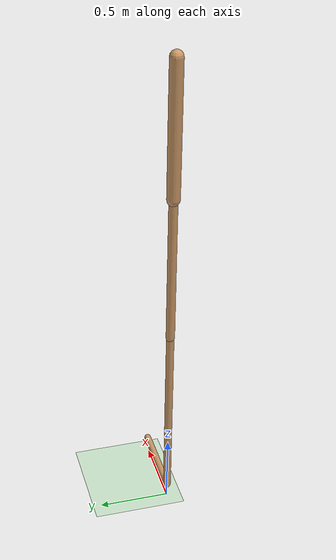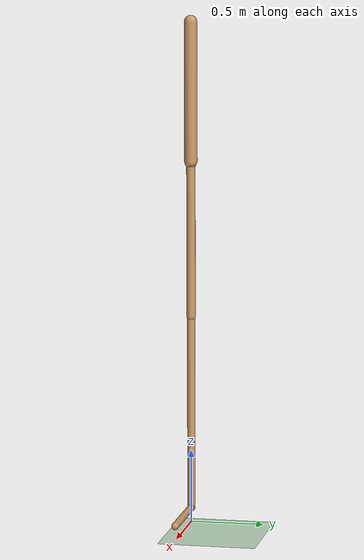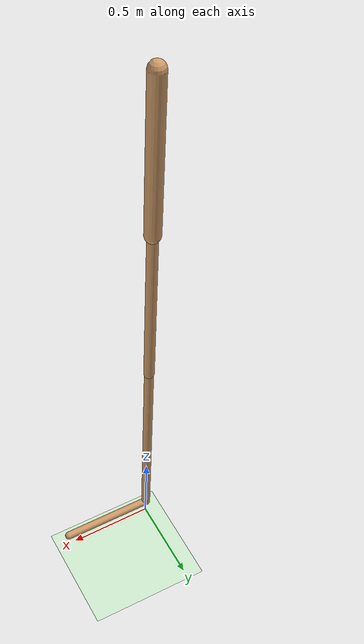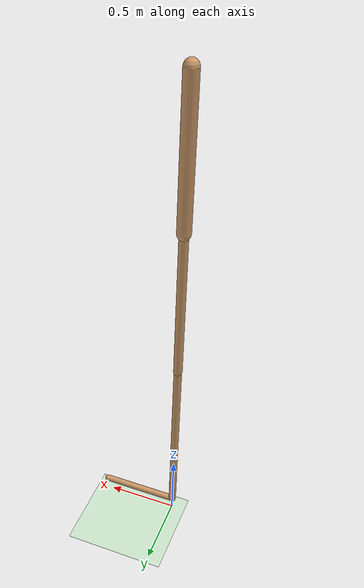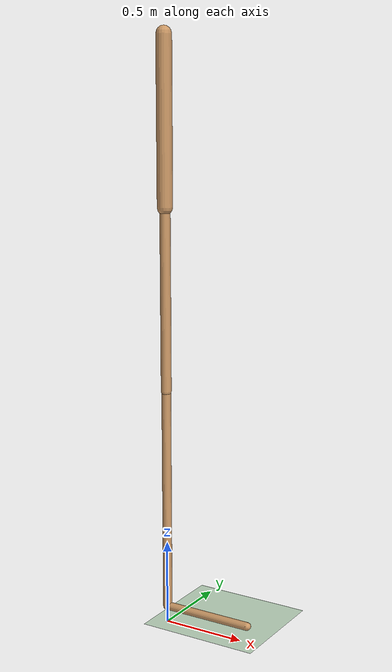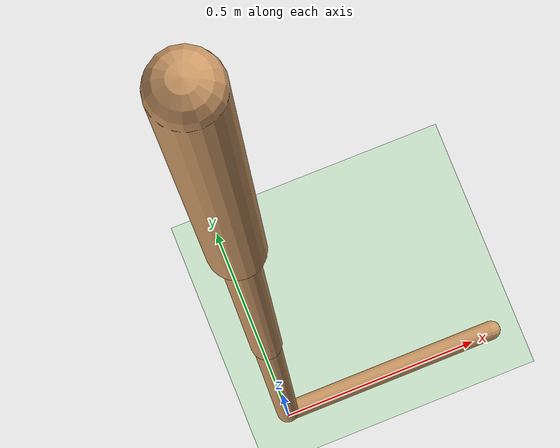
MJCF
<mujoco model="walker2d">
  <compiler angle="degree" inertiafromgeom="true" />
  <default>
    <joint armature="0.01" damping=".1" limited="true" />
    <geom conaffinity="0" condim="3" contype="1" density="1000" friction=".7 .1 .1" rgba="0.8 0.6 .4 1" />
  </default>
  <option integrator="RK4" timestep="0.002" />
  <worldbody>
    <light cutoff="100" diffuse="1 1 1" dir="-0 0 -1.3" directional="true" exponent="1" pos="0 0 1.3" specular=".1 .1 .1" />
    <geom conaffinity="1" condim="3" name="floor" pos="0 0 0" rgba="0.8 0.9 0.8 1" size="40 40 40" type="plane" material="MatPlane" />
    <body name="torso" pos="0 0 2.954086995124817">
      <camera name="track" mode="trackcom" pos="0 -5 -1.25" xyaxes="1 0 0 0 0 1" />
      <joint armature="0" axis="1 0 0" damping="0" limited="false" name="rootx" pos="0 0 -1.25" stiffness="0" type="slide" />
      <joint armature="0" axis="0 0 1" damping="0" limited="false" name="rootz" pos="0 0 -1.25" ref="1.25" stiffness="0" type="slide" />
      <joint armature="0" axis="0 1 0" damping="0" limited="false" name="rooty" pos="0 0 0" stiffness="0" type="hinge" />
      <geom friction="0.9" name="torso_geom" size="0.04437404125928879 0.46990251541137695" type="capsule" />
      <body name="thigh" pos="0 0 -0.46990251541137695">
        <joint axis="0 -1 0" name="thigh_joint" pos="0 0 0" range="-150 0" type="hinge" />
        <site name="torso_thigh_site" pos="0 0 0" size="0.01" type="sphere" rgba="1 0 0 0.5" />
        <geom friction="0.9" pos="0 0 -0.5286564230918884" name="thigh_geom" size="0.030179426074028015 0.5286564230918884" type="capsule" />
        <body name="leg" pos="0 0 -1.7207486629486084">
          <joint axis="0 -1 0" name="leg_joint" pos="0 0 0.6634358167648315" range="-150 0" type="hinge" />
          <site name="thigh_leg_site" pos="0 0 0.25" size="0.01" type="sphere" rgba="1 0 0 0.5" />
          <geom friction="0.9" name="leg_geom" size="0.02693657949566841 0.6634358167648315" type="capsule" />
          <body name="foot" pos="0.5444282293319702 0 -0.7634358167648315">
            <joint axis="0 -1 0" name="foot_joint" pos="-0.5444282293319702 0 0.1" range="-45 45" type="hinge" />
            <site name="leg_foot_site" pos="-0.2 0 0.1" size="0.01" type="sphere" rgba="1 0 0 0.5" />
            <geom friction="0.9" pos="-0.2722141146659851 0 0.1" quat="0.70710678118654757 0 -0.70710678118654746 0" name="foot_geom" size="0.02393895760178566 0.2722141146659851" type="capsule" />
          </body>
        </body>
      </body>

      <body name="thigh_left" pos="0 0 -0.46990251541137695">
        <joint axis="0 -1 0" name="thigh_left_joint" pos="0 0 0" range="-150 0" type="hinge" />
        <site name="torso_thigh_left_site" pos="0 0 0" size="0.01" type="sphere" rgba="1 0 0 0.5" />
        <geom friction="0.9" name="thigh_left_geom" rgba=".7 .3 .6 1" size="0.030179426074028015 0.5286564230918884" pos="0 0 -0.5286564230918884" type="capsule" />
        <body name="leg_left" pos="0 0 -1.7207486629486084">
          <joint axis="0 -1 0" name="leg_left_joint" pos="0 0 0.6634358167648315" range="-150 0" type="hinge" />
          <site name="thigh_leg_left_site" pos="0 0 0.25" size="0.01" type="sphere" rgba="1 0 0 0.5" />
          <geom friction="0.9" name="leg_left_geom" rgba=".7 .3 .6 1" size="0.02693657949566841 0.6634358167648315" type="capsule" />
          <body name="foot_left" pos="0.5444282293319702 0 -0.7634358167648315">
            <joint axis="0 -1 0" name="foot_left_joint" pos="-0.5444282293319702 0 0.1" range="-45 45" type="hinge" />
            <site name="leg_foot_left_site" pos="-0.2 0 0.1" size="0.01" type="sphere" rgba="1 0 0 0.5" />
            <geom friction="1.9" name="foot_left_geom" rgba=".7 .3 .6 1" size="0.02393895760178566 0.2722141146659851" pos="-0.2722141146659851 0 0.1" type="capsule" quat="0.70710678118654757 0 -0.70710678118654746 0" />
          </body>
        </body>
      </body>
    </body>
  </worldbody>
  <actuator>

    <motor ctrllimited="true" ctrlrange="-1.0 1.0" gear="85.59983733115946" joint="thigh_joint" />
    <motor ctrllimited="true" ctrlrange="-1.0 1.0" gear="120.34382635647636" joint="leg_joint" />
    <motor ctrllimited="true" ctrlrange="-1.0 1.0" gear="43.33298540285862" joint="foot_joint" />
    <motor ctrllimited="true" ctrlrange="-1.0 1.0" gear="85.59983733115946" joint="thigh_left_joint" />
    <motor ctrllimited="true" ctrlrange="-1.0 1.0" gear="120.34382635647636" joint="leg_left_joint" />
    <motor ctrllimited="true" ctrlrange="-1.0 1.0" gear="43.33298540285862" joint="foot_left_joint" />

  </actuator>
    <asset>
        <texture type="skybox" builtin="gradient" rgb1=".4 .5 .6" rgb2="0 0 0" width="100" height="100" />
        <texture builtin="flat" height="1278" mark="cross" markrgb="1 1 1" name="texgeom" random="0.01" rgb1="0.8 0.6 0.4" rgb2="0.8 0.6 0.4" type="cube" width="127" />
        <texture builtin="checker" height="100" name="texplane" rgb1="0 0 0" rgb2="0.8 0.8 0.8" type="2d" width="100" />
        <material name="MatPlane" reflectance="0.5" shininess="1" specular="1" texrepeat="60 60" texture="texplane" />
        <material name="geom" texture="texgeom" texuniform="true" />
    </asset>

  <sensor>
    <force site="torso_thigh_site" name="torso_thigh_sensor" />
    <force site="thigh_leg_site" name="thigh_leg_sensor" />
    <force site="leg_foot_site" name="leg_foot_sensor" />
    <force site="torso_thigh_left_site" name="torso_thigh_left_sensor" />
    <force site="thigh_leg_left_site" name="thigh_leg_left_sensor" />
    <force site="leg_foot_left_site" name="leg_foot_left_sensor" />
  </sensor>
</mujoco>
